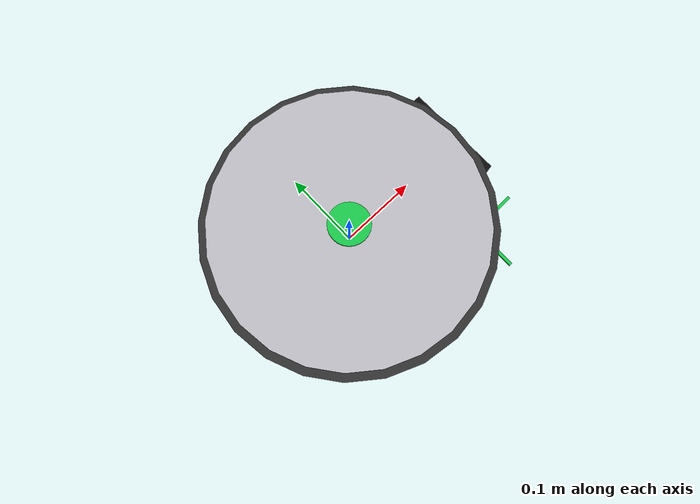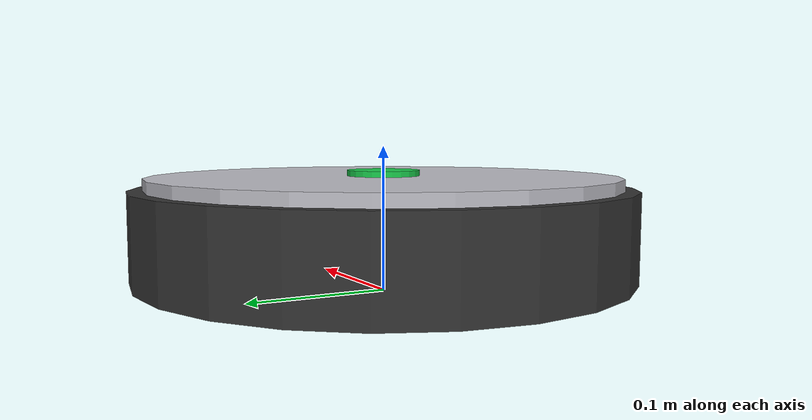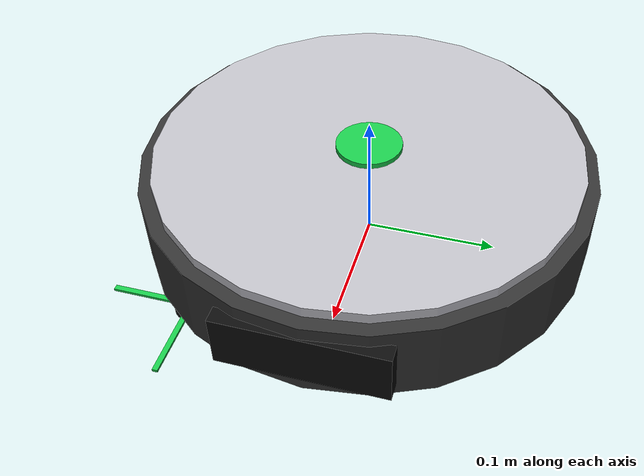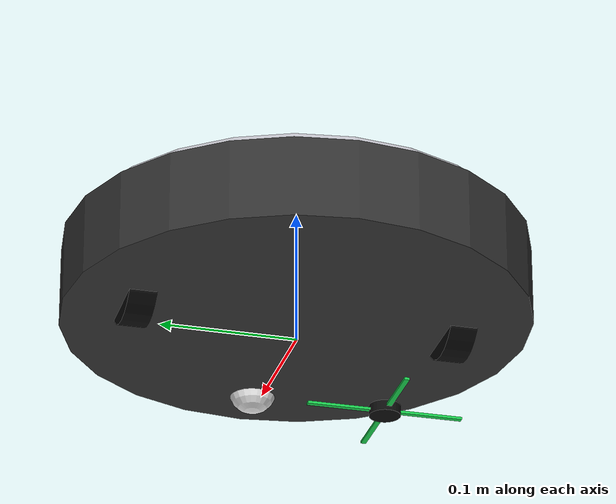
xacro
<?xml version="1.0"?>
<robot name="roomba" xmlns:xacro="http://www.ros.org/wiki/xacro">

  <material name="dark_grey">
    <color rgba="0.20 0.20 0.20 1.0"/>
  </material>
  <material name="silver">
    <color rgba="0.75 0.75 0.78 1.0"/>
  </material>
  <material name="black">
    <color rgba="0.05 0.05 0.05 1.0"/>
  </material>
  <material name="green">
    <color rgba="0.10 0.80 0.30 1.0"/>
  </material>
  <material name="orange">
    <color rgba="1.00 0.50 0.00 1.0"/>
  </material>
  <material name="white">
    <color rgba="0.95 0.95 0.95 1.0"/>
  </material>

  <!--  BASE                                                        -->

  <!-- Raíz sin geometría ni inercia. -->
  <link name="base_footprint"/>

  <!-- Base de la roomba -->
  <!-- Observad que se pueden encadenar distintos visuales
       en un mismo link, como se explicó en la
       anterior clase, para crear formas complejas. -->
  <link name="base_link">
    <visual name="chassis">
      <origin xyz="0 0 0.006" rpy="0 0 0"/>
      <geometry>
        <cylinder radius="0.17" length="0.06"/>
      </geometry>
      <material name="dark_grey"/>
    </visual>
    <visual name="top_cover">
      <origin xyz="0 0 0.040" rpy="0 0 0"/>
      <geometry>
        <cylinder radius="0.16" length="0.008"/>
      </geometry>
      <material name="silver"/>
    </visual>
    <collision>
      <origin xyz="0 0 0.010" rpy="0 0 0"/>
      <geometry>
        <cylinder radius="0.17" length="0.068"/>
      </geometry>
    </collision>
    <inertial>
      <origin xyz="0.02 0 0.010" rpy="0 0 0"/>
      <mass value="3.0"/>
      <inertia ixx="0.02283" ixy="0.0" ixz="0.0"
               iyy="0.02283" iyz="0.0"
               izz="0.04335"/>
    </inertial>
  </link>

  <joint name="base_footprint_joint" type="fixed">
    <parent link="base_footprint"/>
    <child link="base_link"/>
    <origin xyz="0 0 0.036" rpy="0 0 0"/>
  </joint>

  <!--  RUEDAS MOTRICES -->

  <link name="left_wheel_link">
    <visual name="tire">
      <origin xyz="0 0 0" rpy="1.5708 0 0"/>
      <geometry>
        <cylinder radius="0.036" length="0.02"/>
      </geometry>
      <material name="black"/>
    </visual>
    <visual name="marker">
      <origin xyz="0.022 0 0" rpy="0 0 0"/>
      <geometry>
        <box size="0.02 0.022 0.008"/>
      </geometry>
      <material name="orange"/>
    </visual>
    <collision>
      <origin xyz="0 0 0" rpy="1.5708 0 0"/>
      <geometry>
        <cylinder radius="0.036" length="0.02"/>
      </geometry>
    </collision>
    <!-- OJO La rueda es un cilindro TUMBADO: su eje de
         giro ya no es Z sino Y. Por eso la inercia "de eje" (la mayor)
         va en iyy y no en izz, como sería en un cilindro de pie. -->
    <inertial>
      <origin xyz="0 0 0" rpy="0 0 0"/>
      <mass value="0.1"/>
      <inertia ixx="3.573e-5" ixy="0.0" ixz="0.0"
               iyy="6.48e-5" iyz="0.0"
               izz="3.573e-5"/>
    </inertial>
  </link>

  <joint name="left_wheel_joint" type="continuous">
    <parent link="base_link"/>
    <child link="left_wheel_link"/>
    <origin xyz="0 0.1175 0" rpy="0 0 0"/>
    <axis xyz="0 1 0"/>
  </joint>

  <link name="right_wheel_link">
    <visual name="tire">
      <origin xyz="0 0 0" rpy="1.5708 0 0"/>
      <geometry>
        <cylinder radius="0.036" length="0.02"/>
      </geometry>
      <material name="black"/>
    </visual>
    <visual name="marker">
      <origin xyz="0.022 0 0" rpy="0 0 0"/>
      <geometry>
        <box size="0.02 0.022 0.008"/>
      </geometry>
      <material name="orange"/>
    </visual>
    <collision>
      <origin xyz="0 0 0" rpy="1.5708 0 0"/>
      <geometry>
        <cylinder radius="0.036" length="0.02"/>
      </geometry>
    </collision>
    <inertial>
      <origin xyz="0 0 0" rpy="0 0 0"/>
      <mass value="0.1"/>
      <inertia ixx="3.573e-5" ixy="0.0" ixz="0.0"
               iyy="6.48e-5" iyz="0.0"
               izz="3.573e-5"/>
    </inertial>
  </link>

  <joint name="right_wheel_joint" type="continuous">
    <parent link="base_link"/>
    <child link="right_wheel_link"/>
    <origin xyz="0 -0.1175 0" rpy="0 0 0"/>
    <axis xyz="0 1 0"/>
  </joint>

  <!--  RUEDA LIBRE                                         -->
  <link name="caster_link">
    <visual>
      <origin xyz="0 0 0" rpy="0 0 0"/>
      <geometry>
        <sphere radius="0.018"/>
      </geometry>
      <material name="white"/>
    </visual>
    <collision>
      <origin xyz="0 0 0" rpy="0 0 0"/>
      <geometry>
        <sphere radius="0.018"/>
      </geometry>
    </collision>
    <!-- Esfera de 0.05 kg, r = 0.018:  I = 2 · 0.05 · 0.018² / 5 = 6.48e-6 -->
    <inertial>
      <origin xyz="0 0 0" rpy="0 0 0"/>
      <mass value="0.05"/>
      <inertia ixx="6.48e-6" ixy="0.0" ixz="0.0"
               iyy="6.48e-6" iyz="0.0"
               izz="6.48e-6"/>
    </inertial>
  </link>

  <joint name="caster_joint" type="fixed">
    <parent link="base_link"/>
    <child link="caster_link"/>
    <origin xyz="0.13 0 -0.018" rpy="0 0 0"/>
  </joint>

  <!--  CEPILLO LATERAL -->
  <link name="side_brush_link">
    <visual name="hub">
      <origin xyz="0 0 0" rpy="0 0 0"/>
      <geometry>
        <cylinder radius="0.012" length="0.008"/>
      </geometry>
      <material name="black"/>
    </visual>
    <visual name="bristles_a">
      <origin xyz="0 0 0" rpy="0 0 0"/>
      <geometry>
        <box size="0.12 0.004 0.002"/>
      </geometry>
      <material name="green"/>
    </visual>
    <visual name="bristles_b">
      <origin xyz="0 0 0" rpy="0 0 1.5708"/>
      <geometry>
        <box size="0.12 0.004 0.002"/>
      </geometry>
      <material name="green"/>
    </visual>
    <inertial>
      <origin xyz="0 0 0" rpy="0 0 0"/>
      <mass value="0.02"/>
      <inertia ixx="1.803e-5" ixy="0.0" ixz="0.0"
               iyy="1.803e-5" iyz="0.0"
               izz="3.6e-5"/>
    </inertial>
  </link>

  <joint name="side_brush_joint" type="continuous">
    <parent link="base_link"/>
    <child link="side_brush_link"/>
    <origin xyz="0.12 -0.10 -0.028" rpy="0 0 0"/>
    <axis xyz="0 0 1"/>
  </joint>

  <!--  ELEMENTOS FIJOS -->
  <!--  Unidos con joints fixed: Gazebo los fusiona con base_link,  -->
  <link name="bumper_link">
    <visual>
      <origin xyz="0 0 0" rpy="0 0 0"/>
      <geometry>
        <box size="0.012 0.12 0.04"/>
      </geometry>
      <material name="black"/>
    </visual>
  </link>

  <joint name="bumper_joint" type="fixed">
    <parent link="base_link"/>
    <child link="bumper_link"/>
    <origin xyz="0.165 0 0.006" rpy="0 0 0"/>
  </joint>

  <link name="clean_button_link">
    <visual>
      <origin xyz="0 0 0" rpy="0 0 0"/>
      <geometry>
        <cylinder radius="0.025" length="0.004"/>
      </geometry>
      <material name="green"/>
    </visual>
  </link>

  <joint name="clean_button_joint" type="fixed">
    <parent link="base_link"/>
    <child link="clean_button_link"/>
    <origin xyz="0 0 0.046" rpy="0 0 0"/>
  </joint>

  <!--  SIMULACIÓN -->
  <!-- Se añaden al documento, las secciones de ros2_control y de Gazebo. -->
  <xacro:include filename="$(find roomba_gazebo)/urdf/roomba.ros2_control.xacro"/>
  <xacro:include filename="$(find roomba_gazebo)/urdf/roomba.gazebo.xacro"/>

</robot>
